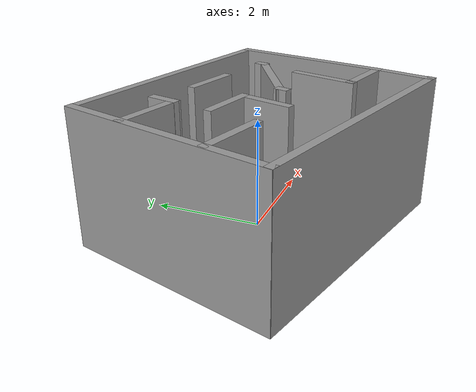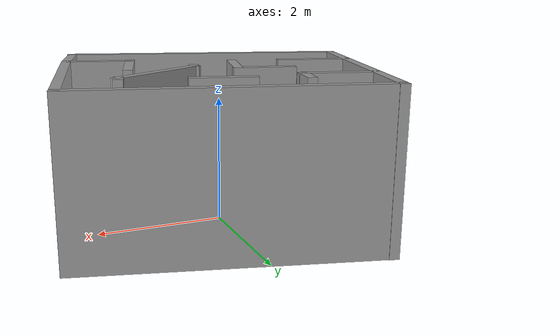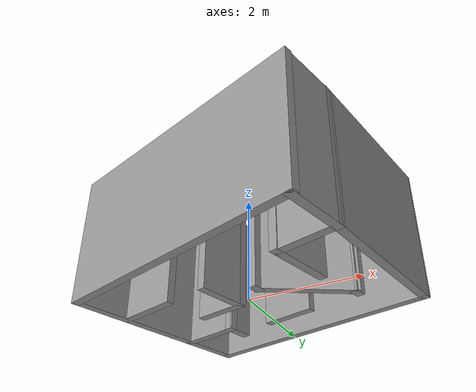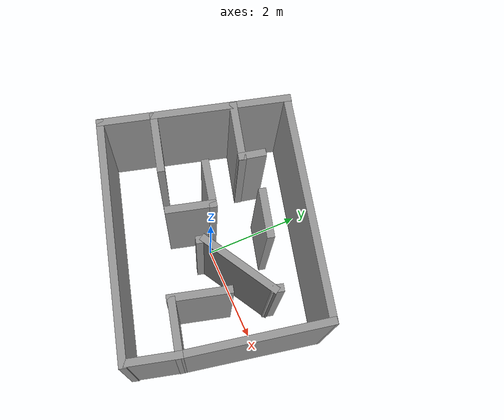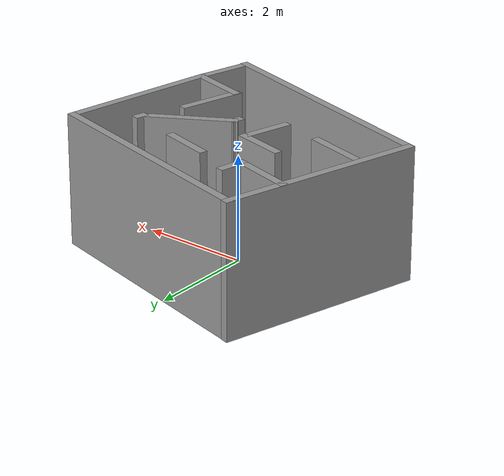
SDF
<?xml version='1.0'?>
<sdf version='1.7'>
  <model name='project'>
    <pose>-0.013418 -0.072206 0 0 -0 0</pose>
    <link name='Wall_10'>
      <collision name='Wall_10_Collision'>
        <geometry>
          <box>
            <size>4.88766 0.15 2.5</size>
          </box>
        </geometry>
        <pose>0 0 1.25 0 -0 0</pose>
      </collision>
      <visual name='Wall_10_Visual'>
        <pose>0 0 1.25 0 -0 0</pose>
        <geometry>
          <box>
            <size>4.88766 0.15 2.5</size>
          </box>
        </geometry>
        <material>
          <script>
            <uri>file://media/materials/scripts/gazebo.material</uri>
            <name>Gazebo/Grey</name>
          </script>
          <ambient>1 1 1 1</ambient>
        </material>
        <meta>
          <layer>0</layer>
        </meta>
      </visual>
      <pose>-0.39409 -1.80937 0 0 -0 -0.280785</pose>
    </link>
    <link name='Wall_11'>
      <collision name='Wall_11_Collision'>
        <geometry>
          <box>
            <size>1.1683 0.15 2.5</size>
          </box>
        </geometry>
        <pose>0 0 1.25 0 -0 0</pose>
      </collision>
      <visual name='Wall_11_Visual'>
        <pose>0 0 1.25 0 -0 0</pose>
        <geometry>
          <box>
            <size>1.1683 0.15 2.5</size>
          </box>
        </geometry>
        <material>
          <script>
            <uri>file://media/materials/scripts/gazebo.material</uri>
            <name>Gazebo/Grey</name>
          </script>
          <ambient>1 1 1 1</ambient>
        </material>
        <meta>
          <layer>0</layer>
        </meta>
      </visual>
      <pose>1.99654 -1.96588 0 0 -0 1.31324</pose>
    </link>
    <link name='Wall_12'>
      <collision name='Wall_12_Collision'>
        <geometry>
          <box>
            <size>1.17314 0.15 2.5</size>
          </box>
        </geometry>
        <pose>0 0 1.25 0 -0 0</pose>
      </collision>
      <visual name='Wall_12_Visual'>
        <pose>0 0 1.25 0 -0 0</pose>
        <geometry>
          <box>
            <size>1.17314 0.15 2.5</size>
          </box>
        </geometry>
        <material>
          <script>
            <uri>file://media/materials/scripts/gazebo.material</uri>
            <name>Gazebo/Grey</name>
          </script>
          <ambient>1 1 1 1</ambient>
        </material>
        <meta>
          <layer>0</layer>
        </meta>
      </visual>
      <pose>1.63129 -1.34417 0 0 -0 2.88596</pose>
    </link>
    <link name='Wall_13'>
      <collision name='Wall_13_Collision'>
        <geometry>
          <box>
            <size>1.25 0.15 2.5</size>
          </box>
        </geometry>
        <pose>0 0 1.25 0 -0 0</pose>
      </collision>
      <visual name='Wall_13_Visual'>
        <pose>0 0 1.25 0 -0 0</pose>
        <geometry>
          <box>
            <size>1.25 0.15 2.5</size>
          </box>
        </geometry>
        <material>
          <script>
            <uri>file://media/materials/scripts/gazebo.material</uri>
            <name>Gazebo/Grey</name>
          </script>
          <ambient>1 1 1 1</ambient>
        </material>
        <meta>
          <layer>0</layer>
        </meta>
      </visual>
      <pose>1.25569 -0.695055 0 0 -0 1.309</pose>
    </link>
    <link name='Wall_15'>
      <collision name='Wall_15_Collision'>
        <geometry>
          <box>
            <size>3.0132 0.15 2.5</size>
          </box>
        </geometry>
        <pose>0 0 1.25 0 -0 0</pose>
      </collision>
      <visual name='Wall_15_Visual'>
        <pose>0 0 1.25 0 -0 0</pose>
        <geometry>
          <box>
            <size>3.0132 0.15 2.5</size>
          </box>
        </geometry>
        <material>
          <script>
            <uri>file://media/materials/scripts/gazebo.material</uri>
            <name>Gazebo/Grey</name>
          </script>
          <ambient>1 1 1 1</ambient>
        </material>
        <meta>
          <layer>0</layer>
        </meta>
      </visual>
      <pose>2.40234 -0.076364 0 0 -0 1.37671</pose>
    </link>
    <link name='Wall_16'>
      <collision name='Wall_16_Collision'>
        <geometry>
          <box>
            <size>4.65612 0.15 2.5</size>
          </box>
        </geometry>
        <pose>0 0 1.25 0 -0 0</pose>
      </collision>
      <visual name='Wall_16_Visual'>
        <pose>0 0 1.25 0 -0 0</pose>
        <geometry>
          <box>
            <size>4.65612 0.15 2.5</size>
          </box>
        </geometry>
        <material>
          <script>
            <uri>file://media/materials/scripts/gazebo.material</uri>
            <name>Gazebo/Grey</name>
          </script>
          <ambient>1 1 1 1</ambient>
        </material>
        <meta>
          <layer>0</layer>
        </meta>
      </visual>
      <pose>0.495996 1.89552 0 0 -0 2.89059</pose>
    </link>
    <link name='Wall_18'>
      <collision name='Wall_18_Collision'>
        <geometry>
          <box>
            <size>1.25 0.15 2.5</size>
          </box>
        </geometry>
        <pose>0 0 1.25 0 -0 0</pose>
      </collision>
      <visual name='Wall_18_Visual'>
        <pose>0 0 1.25 0 -0 0</pose>
        <geometry>
          <box>
            <size>1.25 0.15 2.5</size>
          </box>
        </geometry>
        <material>
          <script>
            <uri>file://media/materials/scripts/gazebo.material</uri>
            <name>Gazebo/Grey</name>
          </script>
          <ambient>1 1 1 1</ambient>
        </material>
        <meta>
          <layer>0</layer>
        </meta>
      </visual>
      <pose>-1.8452 -0.274725 0 0 -0 -0.261799</pose>
    </link>
    <link name='Wall_20'>
      <collision name='Wall_20_Collision'>
        <geometry>
          <box>
            <size>0.994413 0.15 2.5</size>
          </box>
        </geometry>
        <pose>0 0 1.25 0 -0 0</pose>
      </collision>
      <visual name='Wall_20_Visual'>
        <pose>0 0 1.25 0 -0 0</pose>
        <geometry>
          <box>
            <size>0.994413 0.15 2.5</size>
          </box>
        </geometry>
        <material>
          <script>
            <uri>file://media/materials/scripts/gazebo.material</uri>
            <name>Gazebo/Grey</name>
          </script>
          <ambient>1 1 1 1</ambient>
        </material>
        <meta>
          <layer>0</layer>
        </meta>
      </visual>
      <pose>-0.655892 0.321917 0 0 -0 -0.235848</pose>
    </link>
    <link name='Wall_21'>
      <collision name='Wall_21_Collision'>
        <geometry>
          <box>
            <size>1 0.15 2.5</size>
          </box>
        </geometry>
        <pose>0 0 1.25 0 -0 0</pose>
      </collision>
      <visual name='Wall_21_Visual'>
        <pose>0 0 1.25 0 -0 0</pose>
        <geometry>
          <box>
            <size>1 0.15 2.5</size>
          </box>
        </geometry>
        <material>
          <script>
            <uri>file://media/materials/scripts/gazebo.material</uri>
            <name>Gazebo/Grey</name>
          </script>
          <ambient>1 1 1 1</ambient>
        </material>
        <meta>
          <layer>0</layer>
        </meta>
      </visual>
      <pose>-0.362933 -0.194819 0 0 -0 -1.8326</pose>
    </link>
    <link name='Wall_23'>
      <collision name='Wall_23_Collision'>
        <geometry>
          <box>
            <size>1.25 0.15 2.5</size>
          </box>
        </geometry>
        <pose>0 0 1.25 0 -0 0</pose>
      </collision>
      <visual name='Wall_23_Visual'>
        <pose>0 0 1.25 0 -0 0</pose>
        <geometry>
          <box>
            <size>1.25 0.15 2.5</size>
          </box>
        </geometry>
        <material>
          <script>
            <uri>file://media/materials/scripts/gazebo.material</uri>
            <name>Gazebo/Grey</name>
          </script>
          <ambient>1 1 1 1</ambient>
        </material>
        <meta>
          <layer>0</layer>
        </meta>
      </visual>
      <pose>-1.43813 1.27038 0 0 -0 -0.261799</pose>
    </link>
    <link name='Wall_24'>
      <collision name='Wall_24_Collision'>
        <geometry>
          <box>
            <size>0.550904 0.15 2.5</size>
          </box>
        </geometry>
        <pose>0 0 1.25 0 -0 0</pose>
      </collision>
      <visual name='Wall_24_Visual'>
        <pose>0 0 1.25 0 -0 0</pose>
        <geometry>
          <box>
            <size>0.550904 0.15 2.5</size>
          </box>
        </geometry>
        <material>
          <script>
            <uri>file://media/materials/scripts/gazebo.material</uri>
            <name>Gazebo/Grey</name>
          </script>
          <ambient>1 1 1 1</ambient>
        </material>
        <meta>
          <layer>0</layer>
        </meta>
      </visual>
      <pose>-0.87125 1.32377 0 0 -0 1.35365</pose>
    </link>
    <link name='Wall_26'>
      <collision name='Wall_26_Collision'>
        <geometry>
          <box>
            <size>1 0.15 2.5</size>
          </box>
        </geometry>
        <pose>0 0 1.25 0 -0 0</pose>
      </collision>
      <visual name='Wall_26_Visual'>
        <pose>0 0 1.25 0 -0 0</pose>
        <geometry>
          <box>
            <size>1 0.15 2.5</size>
          </box>
        </geometry>
        <material>
          <script>
            <uri>file://media/materials/scripts/gazebo.material</uri>
            <name>Gazebo/Grey</name>
          </script>
          <ambient>1 1 1 1</ambient>
        </material>
        <meta>
          <layer>0</layer>
        </meta>
      </visual>
      <pose>0.322555 1.08013 0 0 -0 -0.261799</pose>
    </link>
    <link name='Wall_28'>
      <collision name='Wall_28_Collision'>
        <geometry>
          <box>
            <size>0.25 0.15 2.5</size>
          </box>
        </geometry>
        <pose>0 0 1.25 0 -0 0</pose>
      </collision>
      <visual name='Wall_28_Visual'>
        <pose>0 0 1.25 0 -0 0</pose>
        <geometry>
          <box>
            <size>0.25 0.15 2.5</size>
          </box>
        </geometry>
        <material>
          <script>
            <uri>file://media/materials/scripts/gazebo.material</uri>
            <name>Gazebo/Grey</name>
          </script>
          <ambient>1 1 1 1</ambient>
        </material>
        <meta>
          <layer>0</layer>
        </meta>
      </visual>
      <pose>0.315977 -0.245078 0 0 -0 1.309</pose>
    </link>
    <link name='Wall_29'>
      <collision name='Wall_29_Collision'>
        <geometry>
          <box>
            <size>1.75 0.15 2.5</size>
          </box>
        </geometry>
        <pose>0 0 1.25 0 -0 0</pose>
      </collision>
      <visual name='Wall_29_Visual'>
        <pose>0 0 1.25 0 -0 0</pose>
        <geometry>
          <box>
            <size>1.75 0.15 2.5</size>
          </box>
        </geometry>
        <material>
          <script>
            <uri>file://media/materials/scripts/gazebo.material</uri>
            <name>Gazebo/Grey</name>
          </script>
          <ambient>1 1 1 1</ambient>
        </material>
        <meta>
          <layer>0</layer>
        </meta>
      </visual>
      <pose>1.02174 0.203218 0 0 -0 0.523599</pose>
    </link>
    <link name='Wall_30'>
      <collision name='Wall_30_Collision'>
        <geometry>
          <box>
            <size>0.25 0.15 2.5</size>
          </box>
        </geometry>
        <pose>0 0 1.25 0 -0 0</pose>
      </collision>
      <visual name='Wall_30_Visual'>
        <pose>0 0 1.25 0 -0 0</pose>
        <geometry>
          <box>
            <size>0.25 0.15 2.5</size>
          </box>
        </geometry>
        <material>
          <script>
            <uri>file://media/materials/scripts/gazebo.material</uri>
            <name>Gazebo/Grey</name>
          </script>
          <ambient>1 1 1 1</ambient>
        </material>
        <meta>
          <layer>0</layer>
        </meta>
      </visual>
      <pose>1.7275 0.651514 0 0 -0 1.309</pose>
    </link>
    <link name='Wall_9'>
      <collision name='Wall_9_Collision'>
        <geometry>
          <box>
            <size>3.89253 0.15 2.5</size>
          </box>
        </geometry>
        <pose>0 0 1.25 0 -0 0</pose>
      </collision>
      <visual name='Wall_9_Visual'>
        <pose>0 0 1.25 0 -0 0</pose>
        <geometry>
          <box>
            <size>3.89253 0.15 2.5</size>
          </box>
        </geometry>
        <material>
          <script>
            <uri>file://media/materials/scripts/gazebo.material</uri>
            <name>Gazebo/Grey</name>
          </script>
          <ambient>1 1 1 1</ambient>
        </material>
        <meta>
          <layer>0</layer>
        </meta>
      </visual>
      <pose>-2.18784 0.660622 0 0 -0 -1.83567</pose>
    </link>
    <static>1</static>
  </model>
</sdf>
